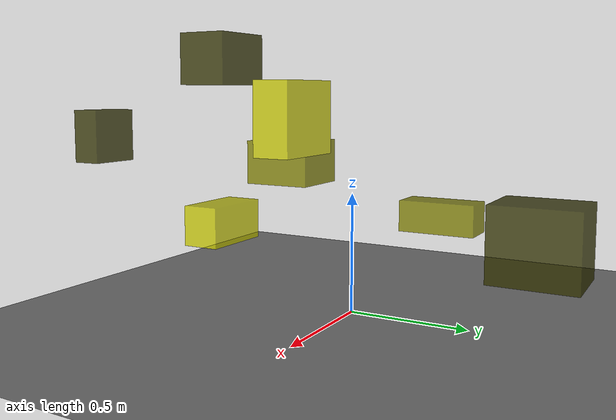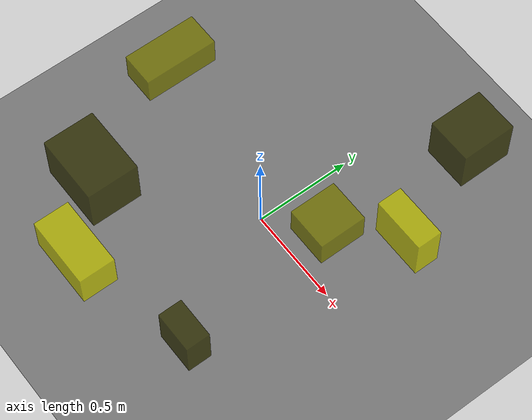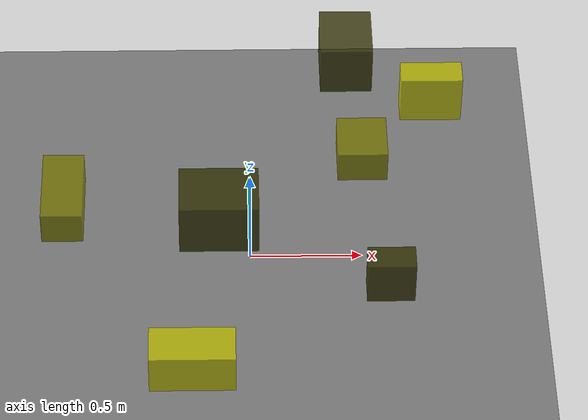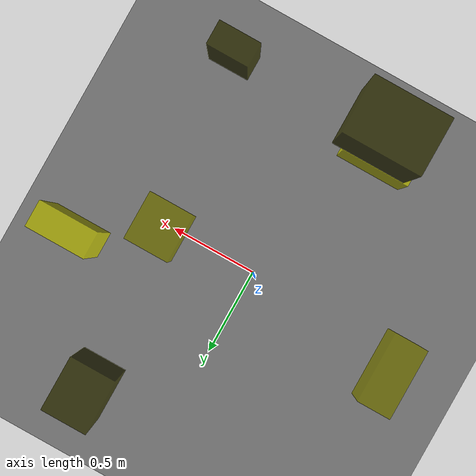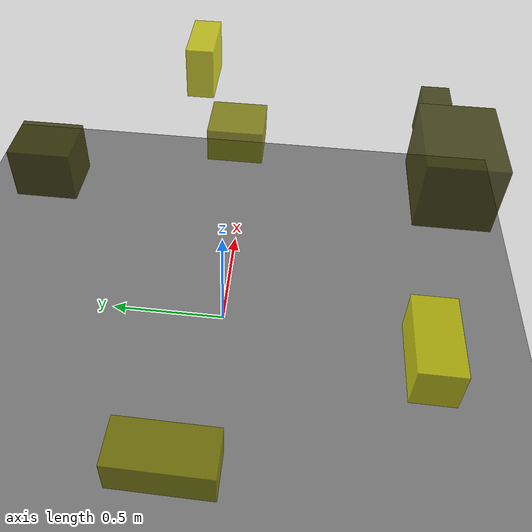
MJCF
<?xml version="1.0"?>
<mujoco model="obstacle_scene">
  <compiler angle="radian" coordinate="local"/>
  <option timestep="0.001" gravity="0 0 -9.81"/>

  <asset>
    <material name="obstacle_mat" rgba="0.8 0.8 0.0 0.8"/>
    <material name="ground_mat" rgba="0.5 0.5 0.5 1"/>
  </asset>

  <worldbody>
    <!-- Ground plane -->
    <geom name="ground" type="plane" size="3 3 0.1" material="ground_mat"/>

    <!-- Obstacles -->
    <body name="obstacle_0" pos="0.448066 0.858071 0.462932">
      <geom name="obs_0" type="box" size="0.117673 0.138898 0.121810" rgba="0.2 0.2 0.0 0.8"/>
    </body>
    <body name="obstacle_1" pos="0.483004 -0.003200 0.675312">
      <geom name="obs_1" type="box" size="0.106911 0.115685 0.074909" rgba="0.5 0.5 0.0 0.8"/>
    </body>
    <body name="obstacle_2" pos="-0.257635 -0.851276 0.268615">
      <geom name="obs_2" type="box" size="0.184102 0.092099 0.097675" rgba="0.8 0.8 0.0 0.8"/>
    </body>
    <body name="obstacle_3" pos="0.570011 -0.818192 0.746756">
      <geom name="obs_3" type="box" size="0.098761 0.056841 0.101797" rgba="0.2 0.2 0.0 0.8"/>
    </body>
    <body name="obstacle_4" pos="-0.834813 0.093860 0.290720">
      <geom name="obs_4" type="box" size="0.091854 0.193321 0.078543" rgba="0.5 0.5 0.0 0.8"/>
    </body>
    <body name="obstacle_5" pos="0.784275 0.182289 0.840385">
      <geom name="obs_5" type="box" size="0.131823 0.059221 0.114452" rgba="0.8 0.8 0.0 0.8"/>
    </body>
    <body name="obstacle_6" pos="-0.138660 -0.755401 1.070038">
      <geom name="obs_6" type="box" size="0.161046 0.119066 0.118837" rgba="0.2 0.2 0.0 0.8"/>
    </body>
  </worldbody>
</mujoco>
